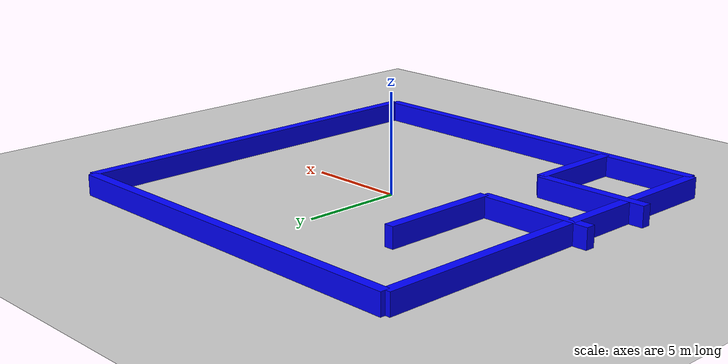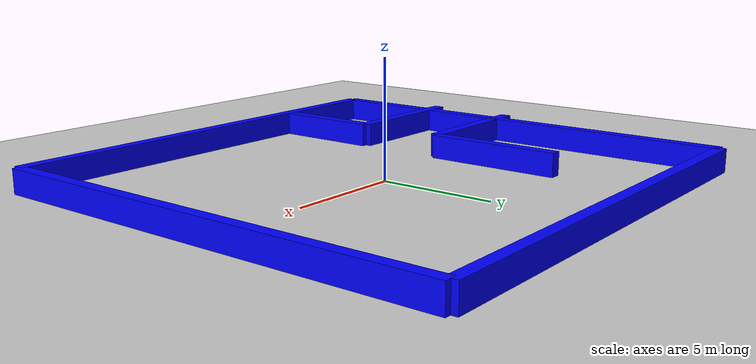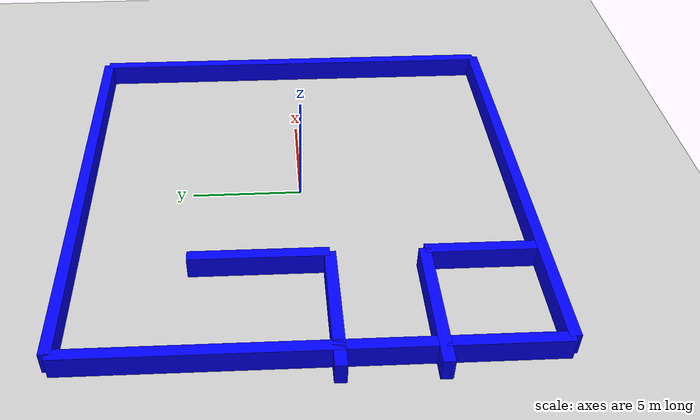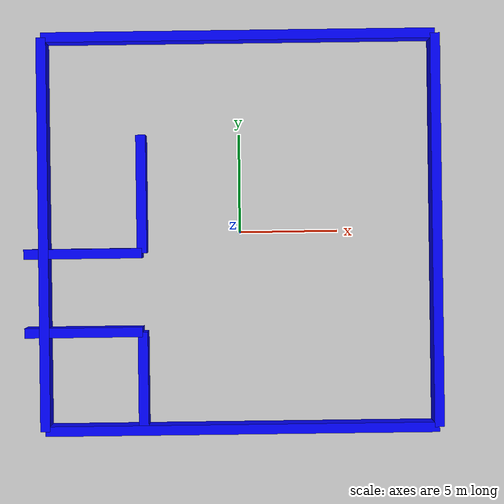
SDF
<?xml version="1.0" ?>
<sdf version="1.8">
    <world name="slu_world">
        <physics name="1ms" type="ignored">
            <max_step_size>0.001</max_step_size>
            <real_time_factor>1.0</real_time_factor>
        </physics>

        <plugin name='gz::sim::systems::Physics' filename='gz-sim-physics-system'/>
        <plugin name='gz::sim::systems::UserCommands' filename='gz-sim-user-commands-system'/>
        <plugin name='gz::sim::systems::SceneBroadcaster' filename='gz-sim-scene-broadcaster-system'/>
        <plugin name='gz::sim::systems::Sensors' filename='gz-sim-sensors-system'>
            <render_engine>ogre2</render_engine>
        </plugin>
        <plugin name='gz::sim::systems::Contact' filename='gz-sim-contact-system'/>

        <light type="directional" name="sun">
            <cast_shadows>true</cast_shadows>
            <pose>0 0 10 0 0 0</pose>
            <diffuse>0.8 0.8 0.8 1</diffuse>
            <specular>0.2 0.2 0.2 1</specular>
            <attenuation>
                <range>1000</range>
                <constant>0.9</constant>
                <linear>0.01</linear>
                <quadratic>0.001</quadratic>
            </attenuation>
            <direction>-0.5 0.1 -0.9</direction>
        </light>

        <model name="ground_plane">
            <static>true</static>
            <link name="link">
                <collision name="collision">
                <geometry>
                    <plane>
                    <normal>0 0 1</normal>
                    </plane>
                </geometry>
                </collision>
                <visual name="visual">
                <geometry>
                    <plane>
                    <normal>0 0 1</normal>
                    <size>100 100</size>
                    </plane>
                </geometry>
                <material>
                    <ambient>0.8 0.8 0.8 1</ambient>
                    <diffuse>0.8 0.8 0.8 1</diffuse>
                    <specular>0.8 0.8 0.8 1</specular>
                </material>
                </visual>
            </link>
        </model>

        <!--Wall1-->
        <model name='wall1'>
            <static>true</static>
            <pose>10 0 0 0 0 0</pose><!--pose relative to the world-->
            <link name='box'>
                <pose/>
                <inertial> <!--inertial properties of the link mass, inertia matix-->
                    <mass>1.14395</mass>
                    <inertia>
                        <ixx>9.532917</ixx>
                        <ixy>0</ixy>
                        <ixz>0</ixz>
                        <iyy>0.023832</iyy>
                        <iyz>0</iyz>
                        <izz>9.556749</izz>
                    </inertia>
                </inertial>
                <visual name='visual'>
                    <geometry>
                        <box>
                            <size>0.5 20.0 2.0</size>
                        </box>
                    </geometry>
                    <!--let's add color to our link-->
                    <material>
                        <ambient>0.0 0.0 1.0 1</ambient>
                        <diffuse>0.0 0.0 1.0 1</diffuse>
                        <specular>0.0 0.0 1.0 1</specular>
                    </material>
                </visual>
                <collision name='collision'> <!--todo: describe why we need the collision-->
                    <geometry>
                        <box>
                            <size>0.5 20.0 2.0</size>
                        </box>
                    </geometry>
                </collision>
            </link>
        </model>

        <!--Wall2-->
        <model name='wall2'>
            <static>true</static>
            <pose>-10 0 0 0 0 0</pose><!--pose relative to the world-->
            <link name='box'>
                <pose/>
                <inertial> <!--inertial properties of the link mass, inertia matix-->
                    <mass>1.14395</mass>
                    <inertia>
                        <ixx>9.532917</ixx>
                        <ixy>0</ixy>
                        <ixz>0</ixz>
                        <iyy>0.023832</iyy>
                        <iyz>0</iyz>
                        <izz>9.556749</izz>
                    </inertia>
                </inertial>
                <visual name='visual'>
                    <geometry>
                        <box>
                            <size>0.5 20.0 2.0</size>
                        </box>
                    </geometry>
                    <!--let's add color to our link-->
                    <material>
                        <ambient>0.0 0.0 1.0 1</ambient>
                        <diffuse>0.0 0.0 1.0 1</diffuse>
                        <specular>0.0 0.0 1.0 1</specular>
                    </material>
                </visual>
                <collision name='collision'> <!--todo: describe why we need the collision-->
                    <geometry>
                        <box>
                            <size>0.5 10.0 2.0</size>
                        </box>
                    </geometry>
                </collision>
            </link>
        </model>

        <!--Wall3-->
        <model name='wall3'>
            <static>true</static>
            <pose>0 10 0 0 0 0</pose><!--pose relative to the world-->
            <link name='box'>
                <pose/>
                <inertial> <!--inertial properties of the link mass, inertia matix-->
                    <mass>1.14395</mass>
                    <inertia>
                        <ixx>9.532917</ixx>
                        <ixy>0</ixy>
                        <ixz>0</ixz>
                        <iyy>0.023832</iyy>
                        <iyz>0</iyz>
                        <izz>9.556749</izz>
                    </inertia>
                </inertial>
                <visual name='visual'>
                    <geometry>
                        <box>
                            <size>20 0.5 2.0</size>
                        </box>
                    </geometry>
                    <!--let's add color to our link-->
                    <material>
                        <ambient>0.0 0.0 1.0 1</ambient>
                        <diffuse>0.0 0.0 1.0 1</diffuse>
                        <specular>0.0 0.0 1.0 1</specular>
                    </material>
                </visual>
                <collision name='collision'> <!--todo: describe why we need the collision-->
                    <geometry>
                        <box>
                            <size>20 0.5 2.0</size>
                        </box>
                    </geometry>
                </collision>
            </link>
        </model>

        <!--Wall4-->
        <model name='wall4'>
            <static>true</static>
            <pose>0 -10 0 0 0 0</pose><!--pose relative to the world-->
            <link name='box'>
                <pose/>
                <inertial> <!--inertial properties of the link mass, inertia matix-->
                    <mass>1.14395</mass>
                    <inertia>
                        <ixx>9.532917</ixx>
                        <ixy>0</ixy>
                        <ixz>0</ixz>
                        <iyy>0.023832</iyy>
                        <iyz>0</iyz>
                        <izz>9.556749</izz>
                    </inertia>
                </inertial>
                <visual name='visual'>
                    <geometry>
                        <box>
                            <size>20 0.5 2.0</size>
                        </box>
                    </geometry>
                    <!--let's add color to our link-->
                    <material>
                        <ambient>0.0 0.0 1.0 1</ambient>
                        <diffuse>0.0 0.0 1.0 1</diffuse>
                        <specular>0.0 0.0 1.0 1</specular>
                    </material>
                </visual>
                <collision name='collision'> <!--todo: describe why we need the collision-->
                    <geometry>
                        <box>
                            <size>20 0.5 2.0</size>
                        </box>
                    </geometry>
                </collision>
            </link>
        </model>

        <!--Wall5-->
        <model name='wall5'>
            <static>true</static>
            <pose>-8 -5 0 0 0 0</pose><!--pose relative to the world-->
            <link name='box'>
                <pose/>
                <inertial> <!--inertial properties of the link mass, inertia matix-->
                    <mass>1.14395</mass>
                    <inertia>
                        <ixx>9.532917</ixx>
                        <ixy>0</ixy>
                        <ixz>0</ixz>
                        <iyy>0.023832</iyy>
                        <iyz>0</iyz>
                        <izz>9.556749</izz>
                    </inertia>
                </inertial>
                <visual name='visual'>
                    <geometry>
                        <box>
                            <size>6 0.5 2.0</size>
                        </box>
                    </geometry>
                    <!--let's add color to our link-->
                    <material>
                        <ambient>0.0 0.0 1.0 1</ambient>
                        <diffuse>0.0 0.0 1.0 1</diffuse>
                        <specular>0.0 0.0 1.0 1</specular>
                    </material>
                </visual>
                <collision name='collision'> <!--todo: describe why we need the collision-->
                    <geometry>
                        <box>
                            <size>6 0.5 2.0</size>
                        </box>
                    </geometry>
                </collision>
            </link>
        </model>

        <!--Wall6-->
        <model name='wall6'>
            <static>true</static>
            <pose>-8 -1 0 0 0 0</pose><!--pose relative to the world-->
            <link name='box'>
                <pose/>
                <inertial> <!--inertial properties of the link mass, inertia matix-->
                    <mass>1.14395</mass>
                    <inertia>
                        <ixx>9.532917</ixx>
                        <ixy>0</ixy>
                        <ixz>0</ixz>
                        <iyy>0.023832</iyy>
                        <iyz>0</iyz>
                        <izz>9.556749</izz>
                    </inertia>
                </inertial>
                <visual name='visual'>
                    <geometry>
                        <box>
                            <size>6 0.5 2.0</size>
                        </box>
                    </geometry>
                    <!--let's add color to our link-->
                    <material>
                        <ambient>0.0 0.0 1.0 1</ambient>
                        <diffuse>0.0 0.0 1.0 1</diffuse>
                        <specular>0.0 0.0 1.0 1</specular>
                    </material>
                </visual>
                <collision name='collision'> <!--todo: describe why we need the collision-->
                    <geometry>
                        <box>
                            <size>6 0.5 2.0</size>
                        </box>
                    </geometry>
                </collision>
            </link>
        </model>

        <!--Wall7-->
        <model name='wall7'>
            <static>true</static>
            <pose>-5 -7.5 0 0 0 0</pose><!--pose relative to the world-->
            <link name='box'>
                <pose/>
                <inertial> <!--inertial properties of the link mass, inertia matix-->
                    <mass>1.14395</mass>
                    <inertia>
                        <ixx>9.532917</ixx>
                        <ixy>0</ixy>
                        <ixz>0</ixz>
                        <iyy>0.023832</iyy>
                        <iyz>0</iyz>
                        <izz>9.556749</izz>
                    </inertia>
                </inertial>
                <visual name='visual'>
                    <geometry>
                        <box>
                            <size>0.5 5.0 2.0</size>
                        </box>
                    </geometry>
                    <!--let's add color to our link-->
                    <material>
                        <ambient>0.0 0.0 1.0 1</ambient>
                        <diffuse>0.0 0.0 1.0 1</diffuse>
                        <specular>0.0 0.0 1.0 1</specular>
                    </material>
                </visual>
                <collision name='collision'> <!--todo: describe why we need the collision-->
                    <geometry>
                        <box>
                            <size>0.5 5.0 2.0</size>
                        </box>
                    </geometry>
                </collision>
            </link>
        </model>

        <!--Wall8-->
        <model name='wall8'>
            <static>true</static>
            <pose>-5 2 0 0 0 0</pose><!--pose relative to the world-->
            <link name='box'>
                <pose/>
                <inertial> <!--inertial properties of the link mass, inertia matix-->
                    <mass>1.14395</mass>
                    <inertia>
                        <ixx>9.532917</ixx>
                        <ixy>0</ixy>
                        <ixz>0</ixz>
                        <iyy>0.023832</iyy>
                        <iyz>0</iyz>
                        <izz>9.556749</izz>
                    </inertia>
                </inertial>
                <visual name='visual'>
                    <geometry>
                        <box>
                            <size>0.5 6.0 2.0</size>
                        </box>
                    </geometry>
                    <!--let's add color to our link-->
                    <material>
                        <ambient>0.0 0.0 1.0 1</ambient>
                        <diffuse>0.0 0.0 1.0 1</diffuse>
                        <specular>0.0 0.0 1.0 1</specular>
                    </material>
                </visual>
                <collision name='collision'> <!--todo: describe why we need the collision-->
                    <geometry>
                        <box>
                            <size>0.5 6.0 2.0</size>
                        </box>
                    </geometry>
                </collision>
            </link>
        </model>
    </world>
</sdf>
